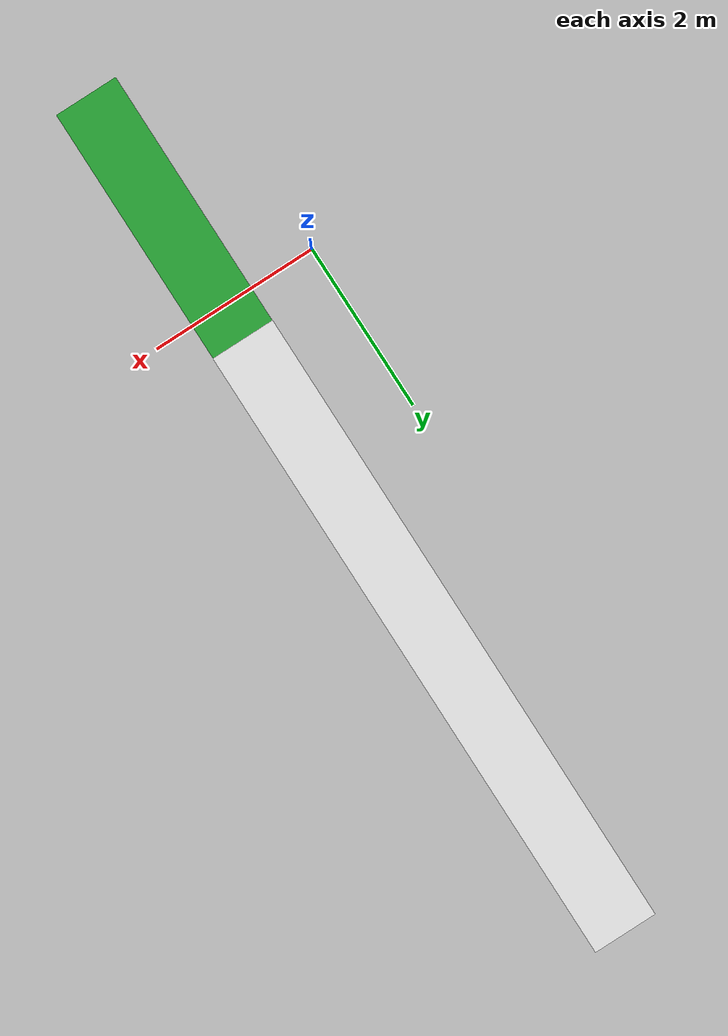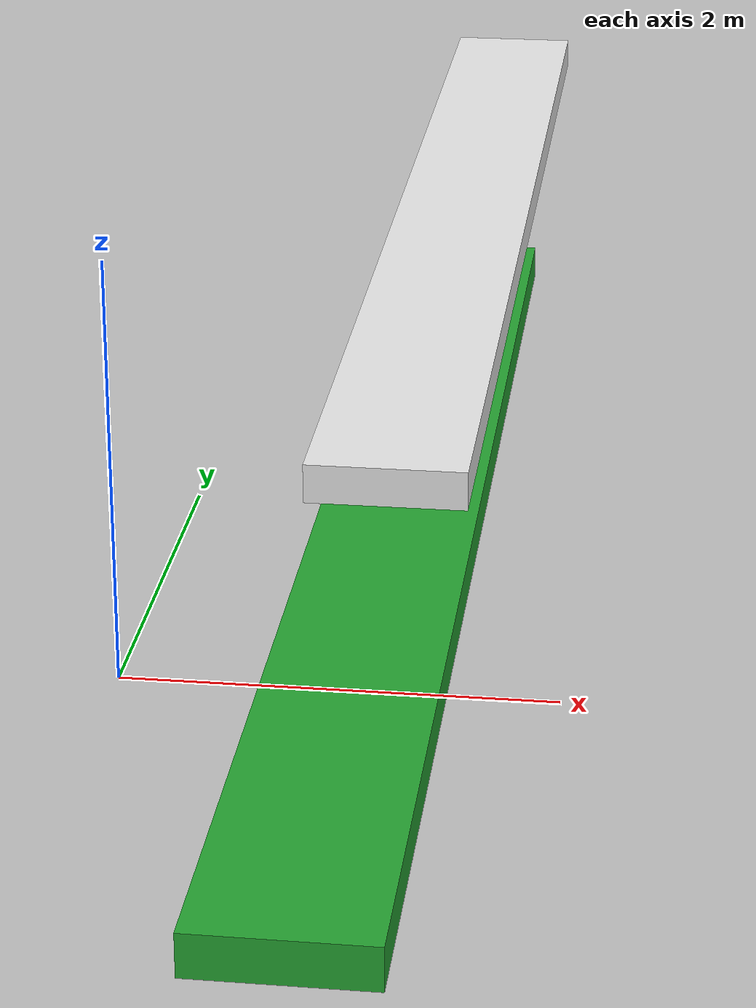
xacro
<?xml version="1.0"?>

<robot name="conveyor_belt" xmlns:xacro="http://ros.org/wiki/xacro">

  <!-- world link -->
  <link name="world" />

  <link name = "conveyor_belt_fixed">
    <visual>
      <origin xyz="0 0 0" rpy="0 0 0"/>
      <geometry>
        <box size = "7.5 0.75461 0.18862" />
      </geometry>
    </visual>
  </link>

  <link name = "conveyor_belt_moving">
    <visual>
      <geometry>
        <box size = "7.5 0.75461 0.18862" />
      </geometry>
    </visual>
    <collision>
      <origin xyz="0 0 0" rpy="0 0 0"/>
      <geometry>
        <box size = "7.5 0.75461 0.18862" />
      </geometry>
    </collision>
    <inertial>
      <origin xyz="0 0 0" rpy="0 0 0"/>
      <mass value="100"/>
      <inertia ixx="100" iyy="1781.5" izz="1784.72" ixy="0" iyz="0" ixz="0"/>
    </inertial>
  </link>

  <gazebo reference="conveyor_belt_fixed">
    <mu>1.0</mu>
    <mu2>1.0</mu2>
    <material>Gazebo/White</material>
  </gazebo>

  <gazebo reference="conveyor_belt_moving">
    <mu>1.0</mu>
    <mu2>1.0</mu2>
    <material>Gazebo/GreenTransparent</material>
  </gazebo>

  <joint name="conveyor_belt_fixed_joint" type="fixed">
    <parent link="world" />
    <child link="conveyor_belt_fixed" />
    <origin xyz="1.16 4.2 0.8" rpy="0 0 -1.57079" />
  </joint>

  <joint name = "belt_joint" type = "prismatic">
    <parent link = "conveyor_belt_fixed"/>
    <child link = "conveyor_belt_moving"/>
    <origin xyz = "3.12 0 -0.45" rpy = "0 0 0"/>
    <limit effort = "30" velocity = "100" lower = "0" upper = "1.0" />
    <axis xyz = "1 0 0"/>
  </joint>

  <gazebo>
    <plugin name="conveyor_belt_plugin" filename="libROSConveyorBeltPlugin.so">
      <enable_topic>conveyor_enable</enable_topic>
      <population_rate_modifier_topic>population/rate_modifier</population_rate_modifier_topic>
      <link>conveyor_belt_moving</link>
      <power>0</power>
      <update_rate>10</update_rate>
    </plugin>
  </gazebo>

</robot>
